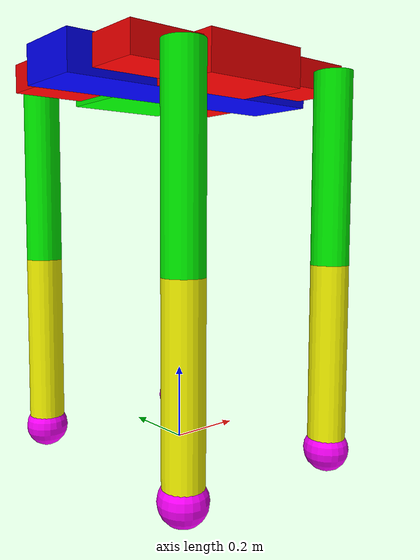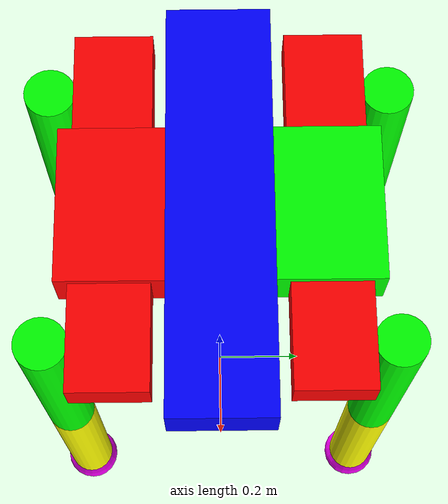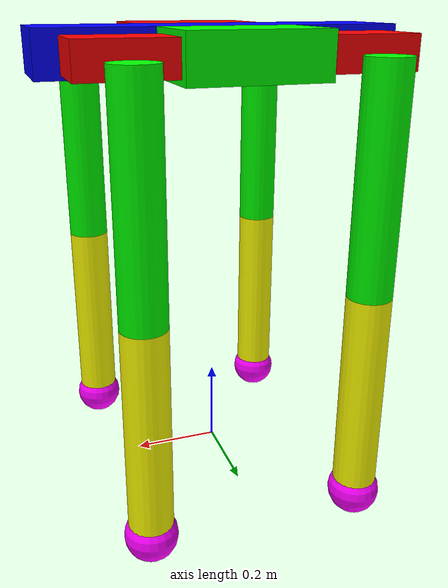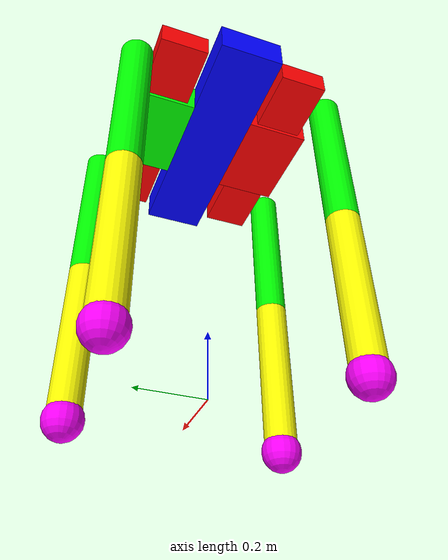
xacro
<?xml version="1.0"?>
<robot xmlns:xacro="http://www.ros.org/wiki/xacro" name="meldog_simple_core">

    <!-- PI -->
    <xacro:property name="PI" value="3.1415926535897"/>

    <!-- Joint properties and macros -->
    <xacro:include filename="joints/joint_properties.urdf.xacro"/>
    <xacro:include filename="joints/joint_macros.urdf.xacro"/>

    <!-- LINKS -->
    <!-- Base link spawns in x= 0.0 y = 0.0 z = 0.0 -->
    <link name="base_link"></link>

    <!-- Trunk link -->
    <xacro:include filename="links/trunk/trunk.urdf.xacro"/>

    <!-- Hip links -->
    <xacro:include filename="links/hip/hip.urdf.xacro"/>
    <xacro:hip_link position="front_left"/>
    <xacro:hip_link position="front_right"/>
    <xacro:hip_link position="back_left"/>
    <xacro:hip_link position="back_right"/>

    <!-- Thigh links -->
    <xacro:include filename="links/thigh/thigh.urdf.xacro"/>
    <xacro:thigh_link position="front_left"/>
    <xacro:thigh_link position="front_right"/>
    <xacro:thigh_link position="back_left"/>
    <xacro:thigh_link position="back_right"/>

    <!-- Shank links -->
    <xacro:include filename="links/shank/shank.urdf.xacro"/>
    <xacro:shank_link position="front_left"/>
    <xacro:shank_link position="front_right"/>
    <xacro:shank_link position="back_left"/>
    <xacro:shank_link position="back_right"/>

    <!-- Feet links (frames in the end of shank) -->
    <xacro:include filename="links/feet/feet.urdf.xacro"/>
    <xacro:feet_link position="front_left"/>
    <xacro:feet_link position="front_right"/>
    <xacro:feet_link position="back_left"/>
    <xacro:feet_link position="back_right"/>

    <!-- JOINTS -->

    <!-- Base to Trunk joint -->
    <joint name="BT_joint" type="fixed">
        <parent link="base_link"/>
        <child link="trunk_link"/>
        <origin xyz="0 0 1.0" rpy="0 0 0"/>
    </joint>

    <!-- Trunk to Hip front left joint -->
    <joint name="FLH_joint" type="revolute">
        <origin xyz="${trunk_actuators_length/2} ${trunk_base_width/2 + trunk_actuators_width/2} 0.0" rpy="0.0 0.0 0.0"/>
        <parent link="trunk_link"/>
        <child link="hip_front_left_link"/>
        <axis xyz="1.0 0.0 0.0"/>
        <xacro:joint_macro lower ="${H_lower_limit}" upper = "${H_upper_limit}"/>
    </joint>

    <!-- Trunk to Hip front right joint -->
    <joint name="FRH_joint" type="revolute">
        <origin xyz="${trunk_actuators_length/2} ${-(trunk_base_width/2 + trunk_actuators_width/2)} 0.0" rpy="0.0 0.0 0.0"/>
        <parent link="trunk_link"/>
        <child link="hip_front_right_link"/>
        <axis xyz="-1.0 0.0 0.0"/>
        <xacro:joint_macro lower ="${H_lower_limit}" upper = "${H_upper_limit}"/>
    </joint>

    <!-- Trunk to Hip back left joint -->
    <joint name="BLH_joint" type="revolute">
        <origin xyz="${-trunk_actuators_length/2} ${trunk_base_width/2 + trunk_actuators_width/2} 0.0" rpy="0.0 0.0 ${PI}"/>
        <parent link="trunk_link"/>
        <child link="hip_back_left_link"/>
        <axis xyz="-1.0 0.0 0.0"/>
        <xacro:joint_macro lower ="${H_lower_limit}" upper = "${H_upper_limit}"/>
    </joint>

    <!-- Trunk to Hip back right joint -->
    <joint name="BRH_joint" type="revolute">
        <origin xyz="${-trunk_actuators_length/2} ${-(trunk_base_width/2 + trunk_actuators_width/2)} 0.0" rpy="0.0 0.0 ${PI}"/>
        <parent link="trunk_link"/>
        <child link="hip_back_right_link"/>
        <axis xyz="1.0 0.0 0.0"/>
        <xacro:joint_macro lower ="${H_lower_limit}" upper = "${H_upper_limit}"/>
    </joint>

    <!-- Hip front left to Thigh front left -->
    <joint name="FLT_joint" type="revolute">
        <origin xyz="${hip_length/2} ${hip_width/2 + thigh_radius} 0.0" rpy="0.0 0.0 0.0"/>
        <parent link="hip_front_left_link"/>
        <child link="thigh_front_left_link"/>
        <axis xyz="0.0 -1.0 0.0"/>
        <xacro:joint_macro lower ="${T_lower_limit}" upper = "${T_upper_limit}"/>
    </joint>

    <!-- Hip front right to Thigh front right -->
    <joint name="FRT_joint" type="revolute">
        <origin xyz="${hip_length/2} ${-(hip_width/2 + thigh_radius)} 0.0" rpy="0.0 0.0 0.0"/>
        <parent link="hip_front_right_link"/>
        <child link="thigh_front_right_link"/>
        <axis xyz="0.0 -1.0 0.0"/>
        <xacro:joint_macro lower ="${T_lower_limit}" upper = "${T_upper_limit}"/>
    </joint>

    <!-- Hip back left to Thigh back left -->
    <joint name="BLT_joint" type="revolute">
        <origin xyz="${hip_length/2} ${-(hip_width/2 + thigh_radius)} 0.0" rpy="0.0 0.0 0.0"/>
        <parent link="hip_back_left_link"/>
        <child link="thigh_back_left_link"/>
        <axis xyz="0.0 1.0 0.0"/>
        <xacro:joint_macro lower ="${T_lower_limit}" upper = "${T_upper_limit}"/>
    </joint>

    <!-- Hip back right to Thigh back right -->
    <joint name="BRT_joint" type="revolute">
        <origin xyz="${hip_length/2} ${hip_width/2 + thigh_radius} 0.0" rpy="0.0 0.0 0.0"/>
        <parent link="hip_back_right_link"/>
        <child link="thigh_back_right_link"/>
        <axis xyz="0.0 1.0 0.0"/>
        <xacro:joint_macro lower ="${T_lower_limit}" upper = "${T_upper_limit}"/>
    </joint>

    <!-- Thigh front left to Shank front left -->
    <joint name="FLS_joint" type="revolute">
        <origin xyz="0.0 0.0 -${thigh_length}" rpy="0.0 0.0 0.0"/>
        <parent link="thigh_front_left_link"/>
        <child link="shank_front_left_link"/>
        <axis xyz="0.0 -1.0 0.0"/>
        <xacro:joint_macro lower ="${S_lower_limit}" upper = "${S_upper_limit}"/>
    </joint>

    <!-- Thigh front right to Shank front right -->
    <joint name="FRS_joint" type="revolute">
        <origin xyz="0.0 0.0 -${thigh_length}" rpy="0.0 0.0 0.0"/>
        <parent link="thigh_front_right_link"/>
        <child link="shank_front_right_link"/>
        <axis xyz="0.0 -1.0 0.0"/>
        <xacro:joint_macro lower ="${S_lower_limit}" upper = "${S_upper_limit}"/>
    </joint>

    <!-- Thigh back left to Shank back left -->
    <joint name="BLS_joint" type="revolute">
        <origin xyz="0.0 0.0 -${thigh_length}" rpy="0.0 0.0 0.0"/>
        <parent link="thigh_back_left_link"/>
        <child link="shank_back_left_link"/>
        <axis xyz="0.0 1.0 0.0"/>
        <xacro:joint_macro lower ="${S_lower_limit}" upper = "${S_upper_limit}"/>
    </joint>

    <!-- Thigh back right to Shank back right -->
    <joint name="BRS_joint" type="revolute">
        <origin xyz="0.0 0.0 -${thigh_length}" rpy="0.0 0.0 0.0"/>
        <parent link="thigh_back_right_link"/>
        <child link="shank_back_right_link"/>
        <axis xyz="0.0 1.0 0.0"/>
        <xacro:joint_macro lower ="${S_lower_limit}" upper = "${S_upper_limit}"/>
    </joint>

    <!-- Shank front left to Feet front left -->
    <joint name="FLF_joint" type="fixed">
        <origin xyz="0.0 0.0 ${-shank_length}" rpy="0.0 0.0 0.0"/>
        <parent link="shank_front_left_link"/>
        <child link="feet_front_left_link"/>
    </joint>

    <!-- Shank front right to Feet right left -->
    <joint name="RLF_joint" type="fixed">
        <origin xyz="0.0 0.0 ${-shank_length}" rpy="0.0 0.0 0.0"/>
        <parent link="shank_front_right_link"/>
        <child link="feet_front_right_link"/>
    </joint>

    <!-- Shank back left to Feet back left -->
    <joint name="BLF_joint" type="fixed">
        <origin xyz="0.0 0.0 ${-shank_length}" rpy="0.0 0.0 0.0"/>
        <parent link="shank_back_left_link"/>
        <child link="feet_back_left_link"/>
    </joint>

    <!-- Shank back right to Feet back right-->
    <joint name="BRF_joint" type="fixed">
        <origin xyz="0.0 0.0 ${-shank_length}" rpy="0.0 0.0 0.0"/>
        <parent link="shank_back_right_link"/>
        <child link="feet_back_right_link"/>
    </joint>

</robot>

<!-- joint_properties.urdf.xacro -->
<robot xmlns:xacro="http://www.ros.org/wiki/xacro" name = "joint_properties">

    <!-- Limits for joints (lower and upper position): -->
    <xacro:property name="H_lower_limit" value="-${PI/2}"/>
    <xacro:property name="H_upper_limit" value="${PI/2}"/>
    <xacro:property name="T_lower_limit" value="-${PI}"/>
    <xacro:property name="T_upper_limit" value="${PI}"/>
    <xacro:property name="S_lower_limit" value="-${5*PI/6}"/>
    <xacro:property name="S_upper_limit" value="${5*PI/6}"/>

    <!-- Limits for joints (velocity, torque)-->
    <xacro:property name="joint_max_velocity" value="20.2"/>
    <xacro:property name="joint_max_torque" value="30"/>

    <!-- Joint properties -->
    <xacro:property name="joint_damping" value="0.0"/>
    <xacro:property name="joint_friction" value="0.0"/>

</robot>

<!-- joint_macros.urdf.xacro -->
<robot xmlns:xacro="http://www.ros.org/wiki/xacro" name = "joint_macros">

    <!-- Joint macro for limits and dynamics -->
    <xacro:macro name ="joint_macro" params="lower upper">
        <limit lower="${lower}" upper="${upper}" effort="${joint_max_torque}" velocity="${joint_max_velocity}"/>
        <dynamics damping="${joint_damping}" friction="${joint_friction}"/>
    </xacro:macro>

</robot>

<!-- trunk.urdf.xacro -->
<robot xmlns:xacro="http://www.ros.org/wiki/xacro" name = "meldog_trunk">

    <!-- Meldog trunk (3 simple boxes) -->
    <xacro:property name="trunk_base_length" value="0.8" />
    <xacro:property name="trunk_base_width" value="0.2" />
    <xacro:property name="trunk_base_height" value="0.1" />

    <xacro:property name="trunk_actuators_length" value="0.3" />
    <xacro:property name="trunk_actuators_width" value="0.2" />
    <xacro:property name="trunk_actuators_height" value="0.1" />

    <xacro:property name="trunk_mass" value="8.0"/>

    <link name="trunk_link">
        <inertial>
            <origin xyz="0.0 0.0 0.0" rpy="0.0 0.0 0.0"/>
            <mass value="${trunk_mass}"/>
            <inertia ixx="${1/12*trunk_mass*(trunk_base_width*trunk_base_width + trunk_base_height*trunk_base_height)}" ixy="0.0" ixz="0.0" iyy="${1/12*trunk_mass*(trunk_base_length*trunk_base_length + trunk_base_height*trunk_base_height)}" iyz=".0" izz="${1/12*trunk_mass*(trunk_base_length*trunk_base_length + trunk_base_width*trunk_base_width)}"/>
        </inertial>

        <visual name="trunk_base_visual">
            <origin xyz="0.0 0.0 0.0" rpy="0.0 0.0 0.0"/>
            <geometry>
                <box size="${trunk_base_length} ${trunk_base_width} ${trunk_base_height}"/>
            </geometry>
            <material name="">
                <color rgba="0.0 0.0 1.0 1.0"/>
            </material>
        </visual>
        <visual name="trunk_actuators_left_visual">
            <origin xyz="0.0 ${trunk_base_width/2 + trunk_actuators_width/2} 0.0" rpy="0.0 0.0 0.0"/>
            <geometry>
                <box size="${trunk_actuators_length} ${trunk_actuators_width} ${trunk_actuators_height}"/>
            </geometry>
            <material name="">
                <color rgba="0.0 1.0 0.0 1.0"/>
            </material>
        </visual>
        <visual name="trunk_actuators_right_visual">
            <origin xyz="0.0 ${-trunk_base_width/2 - trunk_actuators_width/2} 0.0" rpy="0.0 0.0 0.0"/>
            <geometry>
                <box size="${trunk_actuators_length} ${trunk_actuators_width} ${trunk_actuators_height}"/>
            </geometry>
            <material name="">
                <color rgba="1.0 0.0 0.0 1.0"/>
            </material>
        </visual>

         <collision name="trunk_base_collision">
            <origin xyz="0.0 0.0 0.0" rpy="0.0 0.0 0.0"/>
            <geometry>
                <box size="${trunk_base_length} ${trunk_base_width} ${trunk_base_height}"/>
            </geometry>
        </collision>
        <collision name="trunk_actuators_left_collision">
            <origin xyz="0.0 ${trunk_base_width/2 + trunk_actuators_width/2} 0.0" rpy="0.0 0.0 0.0"/>
            <geometry>
                <box size="${trunk_actuators_length} ${trunk_actuators_width} ${trunk_actuators_height}"/>
            </geometry>
        </collision>
        <collision name="trunk_actuators_right_collision">
            <origin xyz="0.0 ${-trunk_base_width/2 - trunk_actuators_width/2} 0.0" rpy="0.0 0.0 0.0"/>
            <geometry>
                <box size="${trunk_actuators_length} ${trunk_actuators_width} ${trunk_actuators_height}"/>
            </geometry>
        </collision>
    </link>
</robot>

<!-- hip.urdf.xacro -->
<robot xmlns:xacro="http://www.ros.org/wiki/xacro" name = "meldog_hip">

    <xacro:property name="hip_length" value="0.2"/>
    <xacro:property name="hip_width" value="0.15"/>
    <xacro:property name="hip_height" value="0.075"/>

    <xacro:property name="hip_mass" value="3.0"/>

    <xacro:macro name="hip_link" params="position">
        <link name="hip_${position}_link">
            <inertial>
                <origin xyz="${hip_length/2} 0.0 0.0" rpy="0.0 0.0 0.0"/>
                <mass value="${hip_mass}"/>
                 <mass value="${trunk_mass}"/>
            <inertia ixx="${1/12*trunk_mass*(hip_width*hip_width + hip_height*hip_height)}" ixy="0.0" ixz="0.0" iyy="${1/12*trunk_mass*(hip_length*hip_length + hip_height*hip_height)}" iyz=".0" izz="${1/12*trunk_mass*(hip_length*hip_length + hip_width*hip_width)}"/>
            </inertial>

            <visual name="hip_${position}_link_visual">
                <origin xyz="${hip_length/2} 0.0 0.0" rpy="0.0 0.0 0.0"/>
                <geometry>
                    <box size="${hip_length} ${hip_width} ${hip_height}"/>
                </geometry>
                <material name="">
                    <color rgba="1.0 0.0 0.0 1.0"/>
                </material>
            </visual>

            <collision name="hip_${position}_link_collision">
                <origin xyz="${hip_length/2} 0.0 0.0" rpy="0.0 0.0 0.0"/>
                <geometry>
                    <box size="${hip_length} ${hip_width} ${hip_height}"/>
                </geometry>
            </collision>

        </link>
    </xacro:macro>
</robot>

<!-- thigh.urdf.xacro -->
<robot xmlns:xacro="http://www.ros.org/wiki/xacro" name = "meldog_thigh">

    <xacro:property name="thigh_length" value="0.5"/>
    <xacro:property name="thigh_radius" value="0.05"/>

    <xacro:property name="thigh_mass" value="1.0"/>

    <xacro:macro name="thigh_link" params="position">
        <link name="thigh_${position}_link">
            <inertial>
                <origin xyz="0.0 0.0 ${-thigh_length/2}" rpy="0.0 0.0 0.0"/>
                <mass value="${thigh_mass}"/>
                <inertia ixx="${1/12*thigh_mass*(3*thigh_radius*thigh_radius+thigh_length*thigh_length)}" ixy="0.0" ixz="0.0" iyy="${1/12*thigh_mass*(3*thigh_radius*thigh_radius+thigh_length*thigh_length)}" iyz="0.0" izz="${1/2*thigh_mass*thigh_radius*thigh_radius}"/>
            </inertial>

            <visual name="thigh_${position}_link_visual">
                <origin xyz="0.0 0.0 ${-thigh_length/2}" rpy="0.0 0.0 0.0"/>
                <geometry>
                    <cylinder radius="${thigh_radius}" length="${thigh_length}"/>
                </geometry>
                <material name="">
                    <color rgba="0.0 1.0 0.0 1.0"/>
                </material>
            </visual>

            <collision name="thigh_${position}_link_collision">
                <origin xyz="0.0 0.0 ${-thigh_length/2}" rpy="0.0 0.0 0.0"/>
                <geometry>
                    <cylinder radius="${thigh_radius}" length="${3*thigh_length/4}"/>
                </geometry>
            </collision>

        </link>
    </xacro:macro>
</robot>

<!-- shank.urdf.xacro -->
<robot xmlns:xacro="http://www.ros.org/wiki/xacro" name = "meldog_shank">

    <xacro:property name="shank_length" value="0.5"/>
    <xacro:property name="shank_radius" value="0.05"/>

    <xacro:property name="shank_mass" value = "1.0"/>

    <xacro:macro name="shank_link" params="position">
        <link name="shank_${position}_link">
            <inertial>
                <origin xyz="0.0 0.0 ${-shank_length/2}" rpy="0.0 0.0 0.0"/>
                <mass value="${shank_mass}"/>
                <inertia ixx="${1/12*shank_mass*(3*shank_radius*shank_radius+shank_length*shank_length)}" ixy="0.0" ixz="0.0" iyy="${1/12*shank_mass*(3*shank_radius*shank_radius+shank_length*shank_length)}" iyz="0.0" izz="${1/2*shank_mass*shank_radius*shank_radius}"/>
            </inertial>

            <visual name="shank_${position}_link_visual">
                <origin xyz="0.0 0.0 ${-shank_length/2}" rpy="0.0 0.0 0.0"/>
                <geometry>
                    <cylinder radius="${shank_radius}" length="${shank_length}"/>
                </geometry>
                <material name="">
                    <color rgba="1.0 1.0 0.0 1.0"/>
                </material>
            </visual>

            <collision name="shank_${position}_link_collision">
                <origin xyz="0.0 0.0 ${-shank_length/2}" rpy="0.0 0.0 0.0"/>
                <geometry>
                    <cylinder radius="${shank_radius}" length="${shank_length}"/>
                </geometry>
            </collision>

        </link>
    </xacro:macro>
</robot>

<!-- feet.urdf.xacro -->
<robot xmlns:xacro="http://www.ros.org/wiki/xacro" name ="meldog_feet">

     <xacro:property name="feet_radius" value="0.06"/>
     <xacro:property name="feet_mass" value="0.1"/>

    <xacro:macro name="feet_link" params="position">
        <link name="feet_${position}_link">
             <inertial>
                <origin xyz="0.0 0.0 0.0" rpy="0.0 0.0 0.0"/>
                <mass value="${feet_mass}"/>
                <inertia ixx="${2/5*feet_mass*feet_radius*feet_radius}" ixy="0.0" ixz="0.0" iyy="${2/5*feet_mass*feet_radius*feet_radius}" iyz="0.0" izz="${2/5*feet_mass*feet_radius*feet_radius}"/>
            </inertial>

            <visual name="feet_visual">
                <origin xyz="0.0 0.0 0.0" rpy="0.0 0.0 0.0"/>
                <geometry>
                    <sphere radius="${feet_radius}"/>
                </geometry>
                <material name="">
                    <color rgba="1.0 0.0 1.0 1.0"/>
                </material>
            </visual>

            <collision name="feet_collision">
                <origin xyz="0.0 0.0 0.0" rpy="0.0 0.0 0.0"/>
                <geometry>
                    <sphere radius="${feet_radius}"/>
                </geometry>
            </collision>
        </link>
    </xacro:macro>
</robot>
